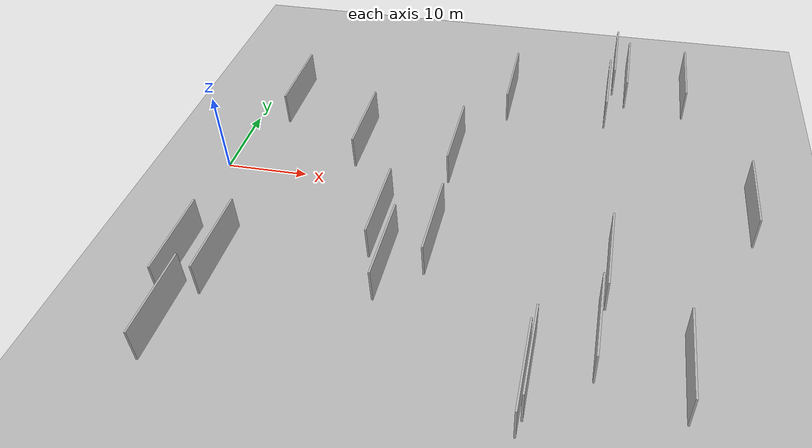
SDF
<?xml version="1.0" encoding="utf-8"?>

<sdf version="1.6">

   <world name="default">

      <gui fullscreen="0">

         <camera name="user_camera">

            <pose>-15 0 4.57585 0 0 0</pose>

            <view_controller>orbit</view_controller>

         </camera>

      </gui>

      <scene>

         <sky>

           <clouds>

             <speed>12</speed>

           </clouds>

         </sky>

         <ambient>0.4 0.4 0.4 1</ambient>

         <background>0.7 0.7 0.7 1</background>

         <shadows>1</shadows>

      </scene>

      <gravity>0 0 -9.8066</gravity>

      <magnetic_field>6e-06 2.3e-05 -4.2e-05</magnetic_field>

      <physics default="0" name="default_physics" type="ode">

         <ode>

            <solver>

               <type>quick</type>

               <iters>10</iters>

               <sor>1.0</sor>

               <use_dynamic_moi_rescaling>0</use_dynamic_moi_rescaling>

            </solver>

            <constraints>

               <cfm>0</cfm>

               <erp>0.2</erp>

               <contact_max_correcting_vel>100</contact_max_correcting_vel>

               <contact_surface_layer>0.001</contact_surface_layer>

            </constraints>

         </ode>

         <max_step_size>0.004</max_step_size>

         <real_time_factor>1</real_time_factor>

         <real_time_update_rate>250</real_time_update_rate>

      </physics>

      <light name="sun" type="directional">

         <cast_shadows>1</cast_shadows>

         <pose>0 0 10 0 0 0</pose>

         <diffuse>0.8 0.8 0.8 1</diffuse>

         <specular>0.2 0.2 0.2 1</specular>

         <attenuation>

            <range>1000</range>

            <constant>0.9</constant>

            <linear>0.01</linear>

            <quadratic>0.001</quadratic>

         </attenuation>

         <direction>-0.5 0.1 -0.9</direction>

      </light>

      <include>

         <name>ground_plane_1</name>

         <uri>model://HANNAS_ground_plane</uri>

         <pose>0 0 0  0 0 0</pose>

      </include>

      <include>

         <name>ground_plane_2</name>

         <uri>model://HANNAS_ground_plane</uri>

         <pose>100 0 0  0 0 0</pose>

      </include>

      <model name="HANNAS_wall_1">

         <static>1</static>

         <pose frame="">40.9652 -26.0209 2.5 0.000000 0.000000 1.570796</pose>

         <link name="link">

            <pose frame="">0 0 2.00 0 0 0</pose>

            <collision name="collision">

               <geometry>

                  <box>

                     <size>10.00 0.2 4.00</size>

                  </box>

               </geometry>

               <max_contacts>10</max_contacts>

               <surface>

                  <contact>

                     <ode/>

                  </contact>

                  <bounce/>

                  <friction>

                     <torsional>

                        <ode/>

                     </torsional>

                     <ode/>

                  </friction>

               </surface>

            </collision>

            <visual name="visual">

               <cast_shadows>0</cast_shadows>

               <geometry>

                  <box>

                     <size>10.00 0.2 4.00</size>

                  </box>

               </geometry>

               <material>

                  <script>

                     <uri>model://HANNAS_wall/materials/scripts</uri>

                     <uri>model://HANNAS_wall/materials/textures</uri>

                     <name>vrc/HANNAS_wall</name>

                  </script>

               </material>

            </visual>

            <self_collide>0</self_collide>

            <enable_wind>0</enable_wind>

            <kinematic>0</kinematic>

         </link>

      </model>

      <model name="HANNAS_wall_2">

         <static>1</static>

         <pose frame="">7.0348 -17.4447 2.5 0.000000 0.000000 1.570796</pose>

         <link name="link">

            <pose frame="">0 0 2.00 0 0 0</pose>

            <collision name="collision">

               <geometry>

                  <box>

                     <size>10.00 0.2 4.00</size>

                  </box>

               </geometry>

               <max_contacts>10</max_contacts>

               <surface>

                  <contact>

                     <ode/>

                  </contact>

                  <bounce/>

                  <friction>

                     <torsional>

                        <ode/>

                     </torsional>

                     <ode/>

                  </friction>

               </surface>

            </collision>

            <visual name="visual">

               <cast_shadows>0</cast_shadows>

               <geometry>

                  <box>

                     <size>10.00 0.2 4.00</size>

                  </box>

               </geometry>

               <material>

                  <script>

                     <uri>model://HANNAS_wall/materials/scripts</uri>

                     <uri>model://HANNAS_wall/materials/textures</uri>

                     <name>vrc/HANNAS_wall</name>

                  </script>

               </material>

            </visual>

            <self_collide>0</self_collide>

            <enable_wind>0</enable_wind>

            <kinematic>0</kinematic>

         </link>

      </model>

      <model name="HANNAS_wall_3">

         <static>1</static>

         <pose frame="">28.2016 3.8458 2.5 0.000000 0.000000 1.570796</pose>

         <link name="link">

            <pose frame="">0 0 2.00 0 0 0</pose>

            <collision name="collision">

               <geometry>

                  <box>

                     <size>10.00 0.2 4.00</size>

                  </box>

               </geometry>

               <max_contacts>10</max_contacts>

               <surface>

                  <contact>

                     <ode/>

                  </contact>

                  <bounce/>

                  <friction>

                     <torsional>

                        <ode/>

                     </torsional>

                     <ode/>

                  </friction>

               </surface>

            </collision>

            <visual name="visual">

               <cast_shadows>0</cast_shadows>

               <geometry>

                  <box>

                     <size>10.00 0.2 4.00</size>

                  </box>

               </geometry>

               <material>

                  <script>

                     <uri>model://HANNAS_wall/materials/scripts</uri>

                     <uri>model://HANNAS_wall/materials/textures</uri>

                     <name>vrc/HANNAS_wall</name>

                  </script>

               </material>

            </visual>

            <self_collide>0</self_collide>

            <enable_wind>0</enable_wind>

            <kinematic>0</kinematic>

         </link>

      </model>

      <model name="HANNAS_wall_4">

         <static>1</static>

         <pose frame="">47.8252 22.6792 2.5 0.000000 0.000000 1.570796</pose>

         <link name="link">

            <pose frame="">0 0 2.00 0 0 0</pose>

            <collision name="collision">

               <geometry>

                  <box>

                     <size>10.00 0.2 4.00</size>

                  </box>

               </geometry>

               <max_contacts>10</max_contacts>

               <surface>

                  <contact>

                     <ode/>

                  </contact>

                  <bounce/>

                  <friction>

                     <torsional>

                        <ode/>

                     </torsional>

                     <ode/>

                  </friction>

               </surface>

            </collision>

            <visual name="visual">

               <cast_shadows>0</cast_shadows>

               <geometry>

                  <box>

                     <size>10.00 0.2 4.00</size>

                  </box>

               </geometry>

               <material>

                  <script>

                     <uri>model://HANNAS_wall/materials/scripts</uri>

                     <uri>model://HANNAS_wall/materials/textures</uri>

                     <name>vrc/HANNAS_wall</name>

                  </script>

               </material>

            </visual>

            <self_collide>0</self_collide>

            <enable_wind>0</enable_wind>

            <kinematic>0</kinematic>

         </link>

      </model>

      <model name="HANNAS_wall_5">

         <static>1</static>

         <pose frame="">55.2218 21.6221 2.5 0.000000 0.000000 1.570796</pose>

         <link name="link">

            <pose frame="">0 0 2.00 0 0 0</pose>

            <collision name="collision">

               <geometry>

                  <box>

                     <size>10.00 0.2 4.00</size>

                  </box>

               </geometry>

               <max_contacts>10</max_contacts>

               <surface>

                  <contact>

                     <ode/>

                  </contact>

                  <bounce/>

                  <friction>

                     <torsional>

                        <ode/>

                     </torsional>

                     <ode/>

                  </friction>

               </surface>

            </collision>

            <visual name="visual">

               <cast_shadows>0</cast_shadows>

               <geometry>

                  <box>

                     <size>10.00 0.2 4.00</size>

                  </box>

               </geometry>

               <material>

                  <script>

                     <uri>model://HANNAS_wall/materials/scripts</uri>

                     <uri>model://HANNAS_wall/materials/textures</uri>

                     <name>vrc/HANNAS_wall</name>

                  </script>

               </material>

            </visual>

            <self_collide>0</self_collide>

            <enable_wind>0</enable_wind>

            <kinematic>0</kinematic>

         </link>

      </model>

      <model name="HANNAS_wall_6">

         <static>1</static>

         <pose frame="">46.8211 -20.9264 2.5 0.000000 0.000000 1.570796</pose>

         <link name="link">

            <pose frame="">0 0 2.00 0 0 0</pose>

            <collision name="collision">

               <geometry>

                  <box>

                     <size>10.00 0.2 4.00</size>

                  </box>

               </geometry>

               <max_contacts>10</max_contacts>

               <surface>

                  <contact>

                     <ode/>

                  </contact>

                  <bounce/>

                  <friction>

                     <torsional>

                        <ode/>

                     </torsional>

                     <ode/>

                  </friction>

               </surface>

            </collision>

            <visual name="visual">

               <cast_shadows>0</cast_shadows>

               <geometry>

                  <box>

                     <size>10.00 0.2 4.00</size>

                  </box>

               </geometry>

               <material>

                  <script>

                     <uri>model://HANNAS_wall/materials/scripts</uri>

                     <uri>model://HANNAS_wall/materials/textures</uri>

                     <name>vrc/HANNAS_wall</name>

                  </script>

               </material>

            </visual>

            <self_collide>0</self_collide>

            <enable_wind>0</enable_wind>

            <kinematic>0</kinematic>

         </link>

      </model>

      <model name="HANNAS_wall_7">

         <static>1</static>

         <pose frame="">3.1076 -18.2592 2.5 0.000000 0.000000 1.570796</pose>

         <link name="link">

            <pose frame="">0 0 2.00 0 0 0</pose>

            <collision name="collision">

               <geometry>

                  <box>

                     <size>10.00 0.2 4.00</size>

                  </box>

               </geometry>

               <max_contacts>10</max_contacts>

               <surface>

                  <contact>

                     <ode/>

                  </contact>

                  <bounce/>

                  <friction>

                     <torsional>

                        <ode/>

                     </torsional>

                     <ode/>

                  </friction>

               </surface>

            </collision>

            <visual name="visual">

               <cast_shadows>0</cast_shadows>

               <geometry>

                  <box>

                     <size>10.00 0.2 4.00</size>

                  </box>

               </geometry>

               <material>

                  <script>

                     <uri>model://HANNAS_wall/materials/scripts</uri>

                     <uri>model://HANNAS_wall/materials/textures</uri>

                     <name>vrc/HANNAS_wall</name>

                  </script>

               </material>

            </visual>

            <self_collide>0</self_collide>

            <enable_wind>0</enable_wind>

            <kinematic>0</kinematic>

         </link>

      </model>

      <model name="HANNAS_wall_8">

         <static>1</static>

         <pose frame="">45.4688 17.8101 2.5 0.000000 0.000000 1.570796</pose>

         <link name="link">

            <pose frame="">0 0 2.00 0 0 0</pose>

            <collision name="collision">

               <geometry>

                  <box>

                     <size>10.00 0.2 4.00</size>

                  </box>

               </geometry>

               <max_contacts>10</max_contacts>

               <surface>

                  <contact>

                     <ode/>

                  </contact>

                  <bounce/>

                  <friction>

                     <torsional>

                        <ode/>

                     </torsional>

                     <ode/>

                  </friction>

               </surface>

            </collision>

            <visual name="visual">

               <cast_shadows>0</cast_shadows>

               <geometry>

                  <box>

                     <size>10.00 0.2 4.00</size>

                  </box>

               </geometry>

               <material>

                  <script>

                     <uri>model://HANNAS_wall/materials/scripts</uri>

                     <uri>model://HANNAS_wall/materials/textures</uri>

                     <name>vrc/HANNAS_wall</name>

                  </script>

               </material>

            </visual>

            <self_collide>0</self_collide>

            <enable_wind>0</enable_wind>

            <kinematic>0</kinematic>

         </link>

      </model>

      <model name="HANNAS_wall_9">

         <static>1</static>

         <pose frame="">33.0896 17.2999 2.5 0.000000 0.000000 1.570796</pose>

         <link name="link">

            <pose frame="">0 0 2.00 0 0 0</pose>

            <collision name="collision">

               <geometry>

                  <box>

                     <size>10.00 0.2 4.00</size>

                  </box>

               </geometry>

               <max_contacts>10</max_contacts>

               <surface>

                  <contact>

                     <ode/>

                  </contact>

                  <bounce/>

                  <friction>

                     <torsional>

                        <ode/>

                     </torsional>

                     <ode/>

                  </friction>

               </surface>

            </collision>

            <visual name="visual">

               <cast_shadows>0</cast_shadows>

               <geometry>

                  <box>

                     <size>10.00 0.2 4.00</size>

                  </box>

               </geometry>

               <material>

                  <script>

                     <uri>model://HANNAS_wall/materials/scripts</uri>

                     <uri>model://HANNAS_wall/materials/textures</uri>

                     <name>vrc/HANNAS_wall</name>

                  </script>

               </material>

            </visual>

            <self_collide>0</self_collide>

            <enable_wind>0</enable_wind>

            <kinematic>0</kinematic>

         </link>

      </model>

      <model name="HANNAS_wall_10">

         <static>1</static>

         <pose frame="">4.9232 -26.0384 2.5 0.000000 0.000000 1.570796</pose>

         <link name="link">

            <pose frame="">0 0 2.00 0 0 0</pose>

            <collision name="collision">

               <geometry>

                  <box>

                     <size>10.00 0.2 4.00</size>

                  </box>

               </geometry>

               <max_contacts>10</max_contacts>

               <surface>

                  <contact>

                     <ode/>

                  </contact>

                  <bounce/>

                  <friction>

                     <torsional>

                        <ode/>

                     </torsional>

                     <ode/>

                  </friction>

               </surface>

            </collision>

            <visual name="visual">

               <cast_shadows>0</cast_shadows>

               <geometry>

                  <box>

                     <size>10.00 0.2 4.00</size>

                  </box>

               </geometry>

               <material>

                  <script>

                     <uri>model://HANNAS_wall/materials/scripts</uri>

                     <uri>model://HANNAS_wall/materials/textures</uri>

                     <name>vrc/HANNAS_wall</name>

                  </script>

               </material>

            </visual>

            <self_collide>0</self_collide>

            <enable_wind>0</enable_wind>

            <kinematic>0</kinematic>

         </link>

      </model>

      <model name="HANNAS_wall_11">

         <static>1</static>

         <pose frame="">28.6940 -10.8225 2.5 0.000000 0.000000 1.570796</pose>

         <link name="link">

            <pose frame="">0 0 2.00 0 0 0</pose>

            <collision name="collision">

               <geometry>

                  <box>

                     <size>10.00 0.2 4.00</size>

                  </box>

               </geometry>

               <max_contacts>10</max_contacts>

               <surface>

                  <contact>

                     <ode/>

                  </contact>

                  <bounce/>

                  <friction>

                     <torsional>

                        <ode/>

                     </torsional>

                     <ode/>

                  </friction>

               </surface>

            </collision>

            <visual name="visual">

               <cast_shadows>0</cast_shadows>

               <geometry>

                  <box>

                     <size>10.00 0.2 4.00</size>

                  </box>

               </geometry>

               <material>

                  <script>

                     <uri>model://HANNAS_wall/materials/scripts</uri>

                     <uri>model://HANNAS_wall/materials/textures</uri>

                     <name>vrc/HANNAS_wall</name>

                  </script>

               </material>

            </visual>

            <self_collide>0</self_collide>

            <enable_wind>0</enable_wind>

            <kinematic>0</kinematic>

         </link>

      </model>

      <model name="HANNAS_wall_12">

         <static>1</static>

         <pose frame="">24.4220 -15.0903 2.5 0.000000 0.000000 1.570796</pose>

         <link name="link">

            <pose frame="">0 0 2.00 0 0 0</pose>

            <collision name="collision">

               <geometry>

                  <box>

                     <size>10.00 0.2 4.00</size>

                  </box>

               </geometry>

               <max_contacts>10</max_contacts>

               <surface>

                  <contact>

                     <ode/>

                  </contact>

                  <bounce/>

                  <friction>

                     <torsional>

                        <ode/>

                     </torsional>

                     <ode/>

                  </friction>

               </surface>

            </collision>

            <visual name="visual">

               <cast_shadows>0</cast_shadows>

               <geometry>

                  <box>

                     <size>10.00 0.2 4.00</size>

                  </box>

               </geometry>

               <material>

                  <script>

                     <uri>model://HANNAS_wall/materials/scripts</uri>

                     <uri>model://HANNAS_wall/materials/textures</uri>

                     <name>vrc/HANNAS_wall</name>

                  </script>

               </material>

            </visual>

            <self_collide>0</self_collide>

            <enable_wind>0</enable_wind>

            <kinematic>0</kinematic>

         </link>

      </model>

      <model name="HANNAS_wall_13">

         <static>1</static>

         <pose frame="">62.3670 -0.7119 2.5 0.000000 0.000000 1.570796</pose>

         <link name="link">

            <pose frame="">0 0 2.00 0 0 0</pose>

            <collision name="collision">

               <geometry>

                  <box>

                     <size>10.00 0.2 4.00</size>

                  </box>

               </geometry>

               <max_contacts>10</max_contacts>

               <surface>

                  <contact>

                     <ode/>

                  </contact>

                  <bounce/>

                  <friction>

                     <torsional>

                        <ode/>

                     </torsional>

                     <ode/>

                  </friction>

               </surface>

            </collision>

            <visual name="visual">

               <cast_shadows>0</cast_shadows>

               <geometry>

                  <box>

                     <size>10.00 0.2 4.00</size>

                  </box>

               </geometry>

               <material>

                  <script>

                     <uri>model://HANNAS_wall/materials/scripts</uri>

                     <uri>model://HANNAS_wall/materials/textures</uri>

                     <name>vrc/HANNAS_wall</name>

                  </script>

               </material>

            </visual>

            <self_collide>0</self_collide>

            <enable_wind>0</enable_wind>

            <kinematic>0</kinematic>

         </link>

      </model>

      <model name="HANNAS_wall_14">

         <static>1</static>

         <pose frame="">5.7523 11.8680 2.5 0.000000 0.000000 1.570796</pose>

         <link name="link">

            <pose frame="">0 0 2.00 0 0 0</pose>

            <collision name="collision">

               <geometry>

                  <box>

                     <size>10.00 0.2 4.00</size>

                  </box>

               </geometry>

               <max_contacts>10</max_contacts>

               <surface>

                  <contact>

                     <ode/>

                  </contact>

                  <bounce/>

                  <friction>

                     <torsional>

                        <ode/>

                     </torsional>

                     <ode/>

                  </friction>

               </surface>

            </collision>

            <visual name="visual">

               <cast_shadows>0</cast_shadows>

               <geometry>

                  <box>

                     <size>10.00 0.2 4.00</size>

                  </box>

               </geometry>

               <material>

                  <script>

                     <uri>model://HANNAS_wall/materials/scripts</uri>

                     <uri>model://HANNAS_wall/materials/textures</uri>

                     <name>vrc/HANNAS_wall</name>

                  </script>

               </material>

            </visual>

            <self_collide>0</self_collide>

            <enable_wind>0</enable_wind>

            <kinematic>0</kinematic>

         </link>

      </model>

      <model name="HANNAS_wall_15">

         <static>1</static>

         <pose frame="">46.1220 25.4278 2.5 0.000000 0.000000 1.570796</pose>

         <link name="link">

            <pose frame="">0 0 2.00 0 0 0</pose>

            <collision name="collision">

               <geometry>

                  <box>

                     <size>10.00 0.2 4.00</size>

                  </box>

               </geometry>

               <max_contacts>10</max_contacts>

               <surface>

                  <contact>

                     <ode/>

                  </contact>

                  <bounce/>

                  <friction>

                     <torsional>

                        <ode/>

                     </torsional>

                     <ode/>

                  </friction>

               </surface>

            </collision>

            <visual name="visual">

               <cast_shadows>0</cast_shadows>

               <geometry>

                  <box>

                     <size>10.00 0.2 4.00</size>

                  </box>

               </geometry>

               <material>

                  <script>

                     <uri>model://HANNAS_wall/materials/scripts</uri>

                     <uri>model://HANNAS_wall/materials/textures</uri>

                     <name>vrc/HANNAS_wall</name>

                  </script>

               </material>

            </visual>

            <self_collide>0</self_collide>

            <enable_wind>0</enable_wind>

            <kinematic>0</kinematic>

         </link>

      </model>

      <model name="HANNAS_wall_16">

         <static>1</static>

         <pose frame="">47.3411 -12.2301 2.5 0.000000 0.000000 1.570796</pose>

         <link name="link">

            <pose frame="">0 0 2.00 0 0 0</pose>

            <collision name="collision">

               <geometry>

                  <box>

                     <size>10.00 0.2 4.00</size>

                  </box>

               </geometry>

               <max_contacts>10</max_contacts>

               <surface>

                  <contact>

                     <ode/>

                  </contact>

                  <bounce/>

                  <friction>

                     <torsional>

                        <ode/>

                     </torsional>

                     <ode/>

                  </friction>

               </surface>

            </collision>

            <visual name="visual">

               <cast_shadows>0</cast_shadows>

               <geometry>

                  <box>

                     <size>10.00 0.2 4.00</size>

                  </box>

               </geometry>

               <material>

                  <script>

                     <uri>model://HANNAS_wall/materials/scripts</uri>

                     <uri>model://HANNAS_wall/materials/textures</uri>

                     <name>vrc/HANNAS_wall</name>

                  </script>

               </material>

            </visual>

            <self_collide>0</self_collide>

            <enable_wind>0</enable_wind>

            <kinematic>0</kinematic>

         </link>

      </model>

      <model name="HANNAS_wall_17">

         <static>1</static>

         <pose frame="">55.1884 -23.8600 2.5 0.000000 0.000000 1.570796</pose>

         <link name="link">

            <pose frame="">0 0 2.00 0 0 0</pose>

            <collision name="collision">

               <geometry>

                  <box>

                     <size>10.00 0.2 4.00</size>

                  </box>

               </geometry>

               <max_contacts>10</max_contacts>

               <surface>

                  <contact>

                     <ode/>

                  </contact>

                  <bounce/>

                  <friction>

                     <torsional>

                        <ode/>

                     </torsional>

                     <ode/>

                  </friction>

               </surface>

            </collision>

            <visual name="visual">

               <cast_shadows>0</cast_shadows>

               <geometry>

                  <box>

                     <size>10.00 0.2 4.00</size>

                  </box>

               </geometry>

               <material>

                  <script>

                     <uri>model://HANNAS_wall/materials/scripts</uri>

                     <uri>model://HANNAS_wall/materials/textures</uri>

                     <name>vrc/HANNAS_wall</name>

                  </script>

               </material>

            </visual>

            <self_collide>0</self_collide>

            <enable_wind>0</enable_wind>

            <kinematic>0</kinematic>

         </link>

      </model>

      <model name="HANNAS_wall_18">

         <static>1</static>

         <pose frame="">22.4075 -9.4460 2.5 0.000000 0.000000 1.570796</pose>

         <link name="link">

            <pose frame="">0 0 2.00 0 0 0</pose>

            <collision name="collision">

               <geometry>

                  <box>

                     <size>10.00 0.2 4.00</size>

                  </box>

               </geometry>

               <max_contacts>10</max_contacts>

               <surface>

                  <contact>

                     <ode/>

                  </contact>

                  <bounce/>

                  <friction>

                     <torsional>

                        <ode/>

                     </torsional>

                     <ode/>

                  </friction>

               </surface>

            </collision>

            <visual name="visual">

               <cast_shadows>0</cast_shadows>

               <geometry>

                  <box>

                     <size>10.00 0.2 4.00</size>

                  </box>

               </geometry>

               <material>

                  <script>

                     <uri>model://HANNAS_wall/materials/scripts</uri>

                     <uri>model://HANNAS_wall/materials/textures</uri>

                     <name>vrc/HANNAS_wall</name>

                  </script>

               </material>

            </visual>

            <self_collide>0</self_collide>

            <enable_wind>0</enable_wind>

            <kinematic>0</kinematic>

         </link>

      </model>

      <model name="HANNAS_wall_19">

         <static>1</static>

         <pose frame="">16.6373 4.8279 2.5 0.000000 0.000000 1.570796</pose>

         <link name="link">

            <pose frame="">0 0 2.00 0 0 0</pose>

            <collision name="collision">

               <geometry>

                  <box>

                     <size>10.00 0.2 4.00</size>

                  </box>

               </geometry>

               <max_contacts>10</max_contacts>

               <surface>

                  <contact>

                     <ode/>

                  </contact>

                  <bounce/>

                  <friction>

                     <torsional>

                        <ode/>

                     </torsional>

                     <ode/>

                  </friction>

               </surface>

            </collision>

            <visual name="visual">

               <cast_shadows>0</cast_shadows>

               <geometry>

                  <box>

                     <size>10.00 0.2 4.00</size>

                  </box>

               </geometry>

               <material>

                  <script>

                     <uri>model://HANNAS_wall/materials/scripts</uri>

                     <uri>model://HANNAS_wall/materials/textures</uri>

                     <name>vrc/HANNAS_wall</name>

                  </script>

               </material>

            </visual>

            <self_collide>0</self_collide>

            <enable_wind>0</enable_wind>

            <kinematic>0</kinematic>

         </link>

      </model>

      <model name="HANNAS_wall_20">

         <static>1</static>

         <pose frame="">40.5881 -27.7302 2.5 0.000000 0.000000 1.570796</pose>

         <link name="link">

            <pose frame="">0 0 2.00 0 0 0</pose>

            <collision name="collision">

               <geometry>

                  <box>

                     <size>10.00 0.2 4.00</size>

                  </box>

               </geometry>

               <max_contacts>10</max_contacts>

               <surface>

                  <contact>

                     <ode/>

                  </contact>

                  <bounce/>

                  <friction>

                     <torsional>

                        <ode/>

                     </torsional>

                     <ode/>

                  </friction>

               </surface>

            </collision>

            <visual name="visual">

               <cast_shadows>0</cast_shadows>

               <geometry>

                  <box>

                     <size>10.00 0.2 4.00</size>

                  </box>

               </geometry>

               <material>

                  <script>

                     <uri>model://HANNAS_wall/materials/scripts</uri>

                     <uri>model://HANNAS_wall/materials/textures</uri>

                     <name>vrc/HANNAS_wall</name>

                  </script>

               </material>

            </visual>

            <self_collide>0</self_collide>

            <enable_wind>0</enable_wind>

            <kinematic>0</kinematic>

         </link>

      </model>

   </world>

</sdf>

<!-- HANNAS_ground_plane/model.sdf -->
<sdf version="1.4">
<model name="HANNAS_ground_plane">
  <static>true</static>
    <link name="link">
      <collision name="collision">
        <geometry>
          <plane>
            <normal>0 0 1</normal>
            <size>1000 1000</size>
          </plane>
        </geometry>
        <surface>
          <friction>
            <ode>
              <mu>100</mu>
              <mu2>50</mu2>
            </ode>
          </friction>
        </surface>
      </collision>
      <visual name="visual">
        <cast_shadows>false</cast_shadows>
        <geometry>
          <plane>
            <normal>0 0 1</normal>
            <size>1000 1000</size>
          </plane>
        </geometry>
        <material>
          <script>
            <uri>model://HANNAS_ground_plane/materials/scripts/HANNAS_ground_plane.material</uri>
	    <uri>model://HANNAS_ground_plane/materials/textures</uri>
            <name>HANNASGroundPlane/Image</name>
          </script>
        </material>
      </visual>
    </link>
  </model>
</sdf>
